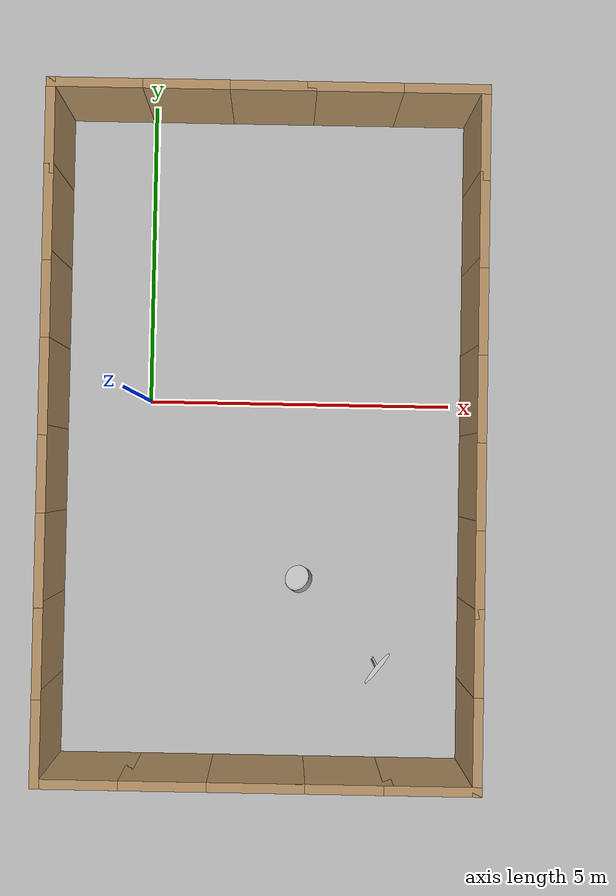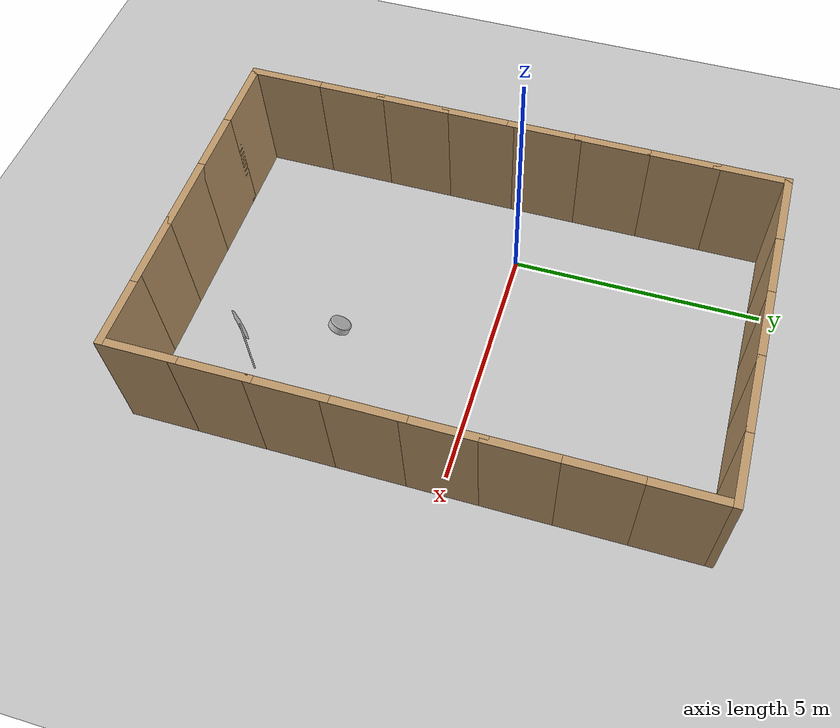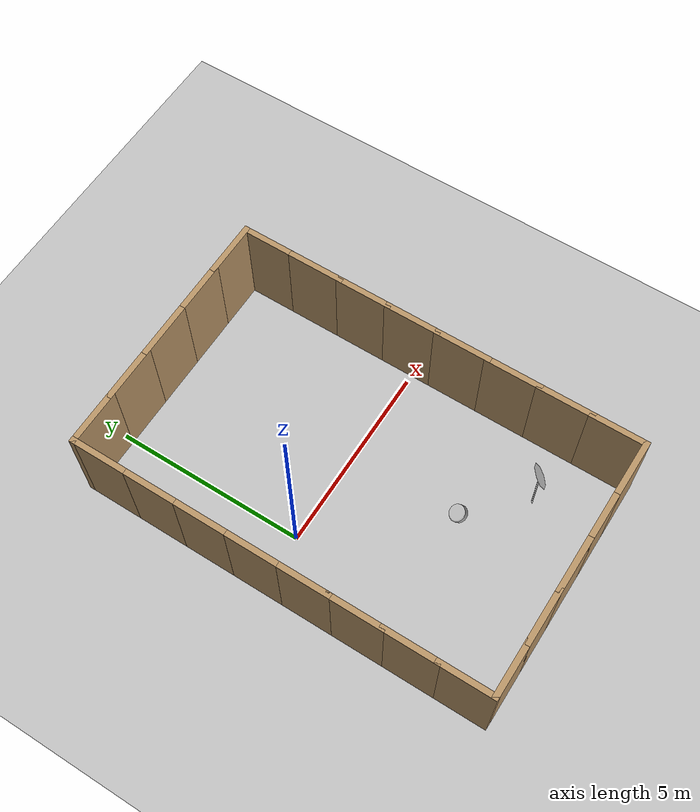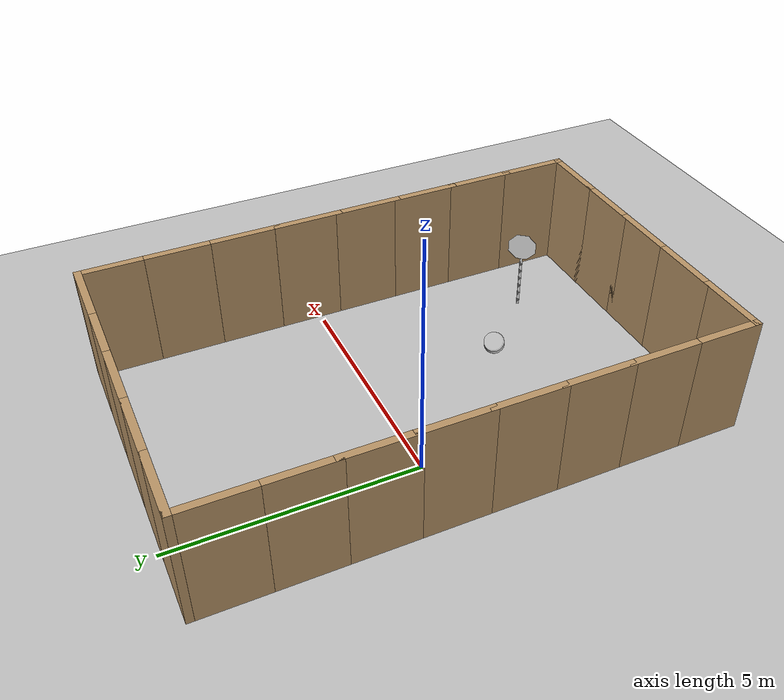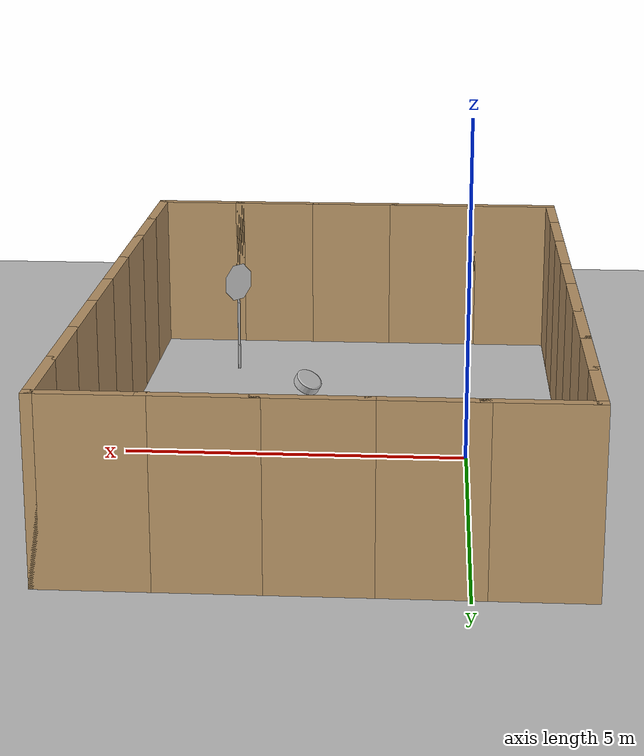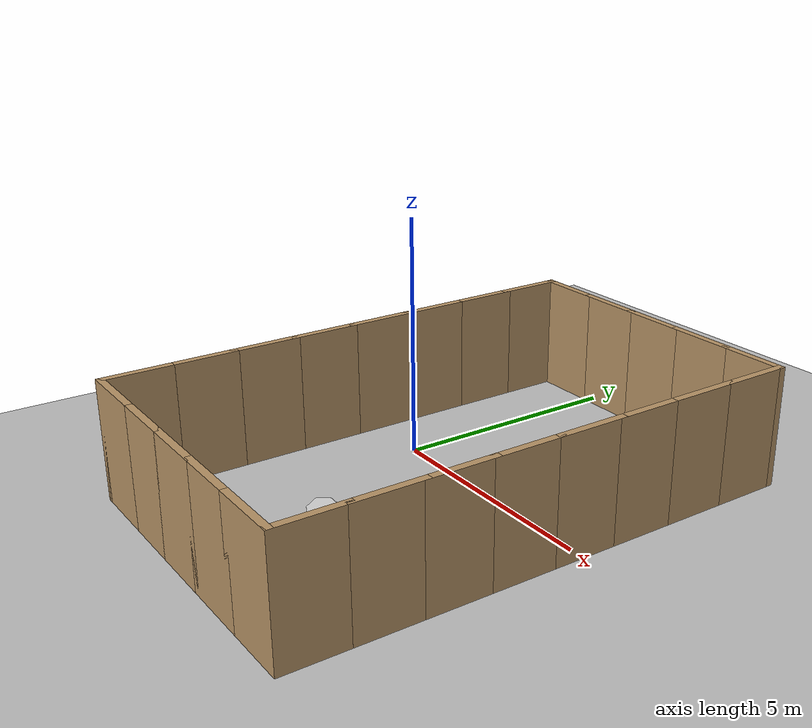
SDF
<sdf version="1.8">
 <world name="default">
  <plugin filename="ignition-gazebo-physics-system" name="ignition::gazebo::systems::Physics"/>
  <plugin filename="ignition-gazebo-user-commands-system" name="ignition::gazebo::systems::UserCommands"/>
  <plugin filename="ignition-gazebo-scene-broadcaster-system" name="ignition::gazebo::systems::SceneBroadcaster"/>
  <plugin filename="ignition-gazebo-sensors-system" name="ignition::gazebo::systems::Sensors">
   <render_engine>ogre2</render_engine>
  </plugin>
  <light name="sun" type="directional">
   <pose>0 0 10 0 0 0</pose>
   <diffuse>0.8 0.8 0.8 1</diffuse>
   <specular>0.2 0.2 0.2 1</specular>
   <attenuation>
    <range>1000</range>
    <constant>0.9</constant>
    <linear>0.01</linear>
    <quadratic>0.001</quadratic>
   </attenuation>
   <direction>-0.5 0.1 -0.9</direction>
  </light>
  <gravity>0 0 -9.8</gravity>
  <magnetic_field>6e-06 2.3e-05 -4.2e-05</magnetic_field>
  <atmosphere type="adiabatic"/>
  <physics name="1ms" type="ode">
   <max_step_size>0.001</max_step_size>
   <real_time_factor>1.0</real_time_factor>
   <real_time_update_rate>1000</real_time_update_rate>
  </physics>
  <scene><ambient>0.4 0.4 0.4 1</ambient><background>0.7 0.7 0.7 1</background><shadows>true</shadows></scene>
  <audio><device>default</device></audio>
  <spherical_coordinates>
   <surface_model>EARTH_WGS84</surface_model>
   <latitude_deg>0</latitude_deg>
   <longitude_deg>0</longitude_deg>
   <elevation>0</elevation>
   <heading_deg>0</heading_deg>
  </spherical_coordinates>
  <model name="ground_plane">
   <static>true</static>
   <link name="link">
    <collision name="collision">
     <geometry><plane><normal>0 0 1</normal><size>100 100</size></plane></geometry>
     <surface>
      <contact><collide_bitmask>65535</collide_bitmask></contact>
      <friction><ode><mu>100</mu><mu2>50</mu2></ode></friction>
     </surface>
    </collision>
    <visual name="visual">
     <cast_shadows>false</cast_shadows>
     <geometry><plane><normal>0 0 1</normal><size>100 100</size></plane></geometry>
     <material>
      <ambient>0.75 0.75 0.75 1</ambient>
      <diffuse>0.75 0.75 0.75 1</diffuse>
      <specular>0.1 0.1 0.1 1</specular>
     </material>
    </visual>
   </link>
  </model>
  <include>
   <name>Stop Sign</name>
   <pose>3.79214 -4.239 -0.018543 0 0 -2.25179</pose>
   <uri>model://stop_sign</uri>
  </include>
  <include>
   <name>car_wheel</name>
   <pose>2.37297 -2.83404 0.062561 -0.116255 0.975737 -0.657672</pose>
   <uri>model://car_wheel</uri>
  </include>
  <model name="wood_wall1">
   <static>true</static>
   <pose>1.90218 -0.55923 0 0 0 0</pose>
   <link name="wall">
    <collision name="wall_27_collision">
     <pose>-3.375 -0.675 1.25 0 0 -1.5708</pose>
     <geometry><box><size>1.5 0.15 2.5</size></box></geometry>
    </collision>
    <visual name="wall_27_visual">
     <pose>-3.375 -0.675 1.25 0 0 -1.5708</pose>
     <geometry><box><size>1.5 0.15 2.5</size></box></geometry>
     <material>
      <ambient>0.72 0.58 0.40 1</ambient>
      <diffuse>0.72 0.58 0.40 1</diffuse>
      <specular>0.08 0.08 0.08 1</specular>
     </material>
    </visual>
    <collision name="wall_28_collision">
     <pose>-3.375 -2.025 1.25 0 0 -1.5708</pose>
     <geometry><box><size>1.5 0.15 2.5</size></box></geometry>
    </collision>
    <visual name="wall_28_visual">
     <pose>-3.375 -2.025 1.25 0 0 -1.5708</pose>
     <geometry><box><size>1.5 0.15 2.5</size></box></geometry>
     <material>
      <ambient>0.72 0.58 0.40 1</ambient>
      <diffuse>0.72 0.58 0.40 1</diffuse>
      <specular>0.08 0.08 0.08 1</specular>
     </material>
    </visual>
    <collision name="wall_31_collision">
     <pose>-3.375 -3.375 1.25 0 0 -1.5708</pose>
     <geometry><box><size>1.5 0.15 2.5</size></box></geometry>
    </collision>
    <visual name="wall_31_visual">
     <pose>-3.375 -3.375 1.25 0 0 -1.5708</pose>
     <geometry><box><size>1.5 0.15 2.5</size></box></geometry>
     <material>
      <ambient>0.72 0.58 0.40 1</ambient>
      <diffuse>0.72 0.58 0.40 1</diffuse>
      <specular>0.08 0.08 0.08 1</specular>
     </material>
    </visual>
    <collision name="wall_32_collision">
     <pose>-3.375 -4.725 1.25 0 0 -1.5708</pose>
     <geometry><box><size>1.5 0.15 2.5</size></box></geometry>
    </collision>
    <visual name="wall_32_visual">
     <pose>-3.375 -4.725 1.25 0 0 -1.5708</pose>
     <geometry><box><size>1.5 0.15 2.5</size></box></geometry>
     <material>
      <ambient>0.72 0.58 0.40 1</ambient>
      <diffuse>0.72 0.58 0.40 1</diffuse>
      <specular>0.08 0.08 0.08 1</specular>
     </material>
    </visual>
    <collision name="wall_33_collision">
     <pose>-2.7 -5.4 1.25 0 0 0</pose>
     <geometry><box><size>1.5 0.15 2.5</size></box></geometry>
    </collision>
    <visual name="wall_33_visual">
     <pose>-2.7 -5.4 1.25 0 0 0</pose>
     <geometry><box><size>1.5 0.15 2.5</size></box></geometry>
     <material>
      <ambient>0.72 0.58 0.40 1</ambient>
      <diffuse>0.72 0.58 0.40 1</diffuse>
      <specular>0.08 0.08 0.08 1</specular>
     </material>
    </visual>
    <collision name="wall_34_collision">
     <pose>-1.35 -5.4 1.25 0 0 0</pose>
     <geometry><box><size>1.5 0.15 2.5</size></box></geometry>
    </collision>
    <visual name="wall_34_visual">
     <pose>-1.35 -5.4 1.25 0 0 0</pose>
     <geometry><box><size>1.5 0.15 2.5</size></box></geometry>
     <material>
      <ambient>0.72 0.58 0.40 1</ambient>
      <diffuse>0.72 0.58 0.40 1</diffuse>
      <specular>0.08 0.08 0.08 1</specular>
     </material>
    </visual>
    <collision name="wall_35_collision">
     <pose>0 -5.4 1.25 0 0 0</pose>
     <geometry><box><size>1.5 0.15 2.5</size></box></geometry>
    </collision>
    <visual name="wall_35_visual">
     <pose>0 -5.4 1.25 0 0 0</pose>
     <geometry><box><size>1.5 0.15 2.5</size></box></geometry>
     <material>
      <ambient>0.72 0.58 0.40 1</ambient>
      <diffuse>0.72 0.58 0.40 1</diffuse>
      <specular>0.08 0.08 0.08 1</specular>
     </material>
    </visual>
    <collision name="wall_36_collision">
     <pose>1.35 -5.4 1.25 0 0 0</pose>
     <geometry><box><size>1.5 0.15 2.5</size></box></geometry>
    </collision>
    <visual name="wall_36_visual">
     <pose>1.35 -5.4 1.25 0 0 0</pose>
     <geometry><box><size>1.5 0.15 2.5</size></box></geometry>
     <material>
      <ambient>0.72 0.58 0.40 1</ambient>
      <diffuse>0.72 0.58 0.40 1</diffuse>
      <specular>0.08 0.08 0.08 1</specular>
     </material>
    </visual>
    <collision name="wall_40_collision">
     <pose>2.7 -5.4 1.25 0 0 0</pose>
     <geometry><box><size>1.5 0.15 2.5</size></box></geometry>
    </collision>
    <visual name="wall_40_visual">
     <pose>2.7 -5.4 1.25 0 0 0</pose>
     <geometry><box><size>1.5 0.15 2.5</size></box></geometry>
     <material>
      <ambient>0.72 0.58 0.40 1</ambient>
      <diffuse>0.72 0.58 0.40 1</diffuse>
      <specular>0.08 0.08 0.08 1</specular>
     </material>
    </visual>
    <collision name="wall_41_collision">
     <pose>3.375 -4.725 1.25 0 0 1.5708</pose>
     <geometry><box><size>1.5 0.15 2.5</size></box></geometry>
    </collision>
    <visual name="wall_41_visual">
     <pose>3.375 -4.725 1.25 0 0 1.5708</pose>
     <geometry><box><size>1.5 0.15 2.5</size></box></geometry>
     <material>
      <ambient>0.72 0.58 0.40 1</ambient>
      <diffuse>0.72 0.58 0.40 1</diffuse>
      <specular>0.08 0.08 0.08 1</specular>
     </material>
    </visual>
    <collision name="wall_42_collision">
     <pose>3.375 -3.375 1.25 0 0 1.5708</pose>
     <geometry><box><size>1.5 0.15 2.5</size></box></geometry>
    </collision>
    <visual name="wall_42_visual">
     <pose>3.375 -3.375 1.25 0 0 1.5708</pose>
     <geometry><box><size>1.5 0.15 2.5</size></box></geometry>
     <material>
      <ambient>0.72 0.58 0.40 1</ambient>
      <diffuse>0.72 0.58 0.40 1</diffuse>
      <specular>0.08 0.08 0.08 1</specular>
     </material>
    </visual>
    <collision name="wall_43_collision">
     <pose>3.375 -2.025 1.25 0 0 1.5708</pose>
     <geometry><box><size>1.5 0.15 2.5</size></box></geometry>
    </collision>
    <visual name="wall_43_visual">
     <pose>3.375 -2.025 1.25 0 0 1.5708</pose>
     <geometry><box><size>1.5 0.15 2.5</size></box></geometry>
     <material>
      <ambient>0.72 0.58 0.40 1</ambient>
      <diffuse>0.72 0.58 0.40 1</diffuse>
      <specular>0.08 0.08 0.08 1</specular>
     </material>
    </visual>
    <collision name="wall_45_collision">
     <pose>3.375 -0.675 1.25 0 0 1.5708</pose>
     <geometry><box><size>1.5 0.15 2.5</size></box></geometry>
    </collision>
    <visual name="wall_45_visual">
     <pose>3.375 -0.675 1.25 0 0 1.5708</pose>
     <geometry><box><size>1.5 0.15 2.5</size></box></geometry>
     <material>
      <ambient>0.72 0.58 0.40 1</ambient>
      <diffuse>0.72 0.58 0.40 1</diffuse>
      <specular>0.08 0.08 0.08 1</specular>
     </material>
    </visual>
    <collision name="wall_46_collision">
     <pose>3.375 0.675 1.25 0 0 1.5708</pose>
     <geometry><box><size>1.5 0.15 2.5</size></box></geometry>
    </collision>
    <visual name="wall_46_visual">
     <pose>3.375 0.675 1.25 0 0 1.5708</pose>
     <geometry><box><size>1.5 0.15 2.5</size></box></geometry>
     <material>
      <ambient>0.72 0.58 0.40 1</ambient>
      <diffuse>0.72 0.58 0.40 1</diffuse>
      <specular>0.08 0.08 0.08 1</specular>
     </material>
    </visual>
    <collision name="wall_49_collision">
     <pose>3.375 2.025 1.25 0 0 1.5708</pose>
     <geometry><box><size>1.5 0.15 2.5</size></box></geometry>
    </collision>
    <visual name="wall_49_visual">
     <pose>3.375 2.025 1.25 0 0 1.5708</pose>
     <geometry><box><size>1.5 0.15 2.5</size></box></geometry>
     <material>
      <ambient>0.72 0.58 0.40 1</ambient>
      <diffuse>0.72 0.58 0.40 1</diffuse>
      <specular>0.08 0.08 0.08 1</specular>
     </material>
    </visual>
    <collision name="wall_51_collision">
     <pose>3.375 3.375 1.25 0 0 1.5708</pose>
     <geometry><box><size>1.5 0.15 2.5</size></box></geometry>
    </collision>
    <visual name="wall_51_visual">
     <pose>3.375 3.375 1.25 0 0 1.5708</pose>
     <geometry><box><size>1.5 0.15 2.5</size></box></geometry>
     <material>
      <ambient>0.72 0.58 0.40 1</ambient>
      <diffuse>0.72 0.58 0.40 1</diffuse>
      <specular>0.08 0.08 0.08 1</specular>
     </material>
    </visual>
    <collision name="wall_52_collision">
     <pose>3.375 4.725 1.25 0 0 1.5708</pose>
     <geometry><box><size>1.5 0.15 2.5</size></box></geometry>
    </collision>
    <visual name="wall_52_visual">
     <pose>3.375 4.725 1.25 0 0 1.5708</pose>
     <geometry><box><size>1.5 0.15 2.5</size></box></geometry>
     <material>
      <ambient>0.72 0.58 0.40 1</ambient>
      <diffuse>0.72 0.58 0.40 1</diffuse>
      <specular>0.08 0.08 0.08 1</specular>
     </material>
    </visual>
    <collision name="wall_53_collision">
     <pose>2.7 5.4 1.25 0 0 3.14159</pose>
     <geometry><box><size>1.5 0.15 2.5</size></box></geometry>
    </collision>
    <visual name="wall_53_visual">
     <pose>2.7 5.4 1.25 0 0 3.14159</pose>
     <geometry><box><size>1.5 0.15 2.5</size></box></geometry>
     <material>
      <ambient>0.72 0.58 0.40 1</ambient>
      <diffuse>0.72 0.58 0.40 1</diffuse>
      <specular>0.08 0.08 0.08 1</specular>
     </material>
    </visual>
    <collision name="wall_54_collision">
     <pose>1.35 5.4 1.25 0 0 3.14159</pose>
     <geometry><box><size>1.5 0.15 2.5</size></box></geometry>
    </collision>
    <visual name="wall_54_visual">
     <pose>1.35 5.4 1.25 0 0 3.14159</pose>
     <geometry><box><size>1.5 0.15 2.5</size></box></geometry>
     <material>
      <ambient>0.72 0.58 0.40 1</ambient>
      <diffuse>0.72 0.58 0.40 1</diffuse>
      <specular>0.08 0.08 0.08 1</specular>
     </material>
    </visual>
    <collision name="wall_55_collision">
     <pose>0 5.4 1.25 0 0 3.14159</pose>
     <geometry><box><size>1.5 0.15 2.5</size></box></geometry>
    </collision>
    <visual name="wall_55_visual">
     <pose>0 5.4 1.25 0 0 3.14159</pose>
     <geometry><box><size>1.5 0.15 2.5</size></box></geometry>
     <material>
      <ambient>0.72 0.58 0.40 1</ambient>
      <diffuse>0.72 0.58 0.40 1</diffuse>
      <specular>0.08 0.08 0.08 1</specular>
     </material>
    </visual>
    <collision name="wall_56_collision">
     <pose>-1.35 5.4 1.25 0 0 3.14159</pose>
     <geometry><box><size>1.5 0.15 2.5</size></box></geometry>
    </collision>
    <visual name="wall_56_visual">
     <pose>-1.35 5.4 1.25 0 0 3.14159</pose>
     <geometry><box><size>1.5 0.15 2.5</size></box></geometry>
     <material>
      <ambient>0.72 0.58 0.40 1</ambient>
      <diffuse>0.72 0.58 0.40 1</diffuse>
      <specular>0.08 0.08 0.08 1</specular>
     </material>
    </visual>
    <collision name="wall_57_collision">
     <pose>-2.7 5.4 1.25 0 0 3.14159</pose>
     <geometry><box><size>1.5 0.15 2.5</size></box></geometry>
    </collision>
    <visual name="wall_57_visual">
     <pose>-2.7 5.4 1.25 0 0 3.14159</pose>
     <geometry><box><size>1.5 0.15 2.5</size></box></geometry>
     <material>
      <ambient>0.72 0.58 0.40 1</ambient>
      <diffuse>0.72 0.58 0.40 1</diffuse>
      <specular>0.08 0.08 0.08 1</specular>
     </material>
    </visual>
    <collision name="wall_58_collision">
     <pose>-3.375 4.725 1.25 0 0 -1.5708</pose>
     <geometry><box><size>1.5 0.15 2.5</size></box></geometry>
    </collision>
    <visual name="wall_58_visual">
     <pose>-3.375 4.725 1.25 0 0 -1.5708</pose>
     <geometry><box><size>1.5 0.15 2.5</size></box></geometry>
     <material>
      <ambient>0.72 0.58 0.40 1</ambient>
      <diffuse>0.72 0.58 0.40 1</diffuse>
      <specular>0.08 0.08 0.08 1</specular>
     </material>
    </visual>
    <collision name="wall_59_collision">
     <pose>-3.375 3.375 1.25 0 0 -1.5708</pose>
     <geometry><box><size>1.5 0.15 2.5</size></box></geometry>
    </collision>
    <visual name="wall_59_visual">
     <pose>-3.375 3.375 1.25 0 0 -1.5708</pose>
     <geometry><box><size>1.5 0.15 2.5</size></box></geometry>
     <material>
      <ambient>0.72 0.58 0.40 1</ambient>
      <diffuse>0.72 0.58 0.40 1</diffuse>
      <specular>0.08 0.08 0.08 1</specular>
     </material>
    </visual>
    <collision name="wall_61_collision">
     <pose>-3.375 2.025 1.25 0 0 -1.5708</pose>
     <geometry><box><size>1.5 0.15 2.5</size></box></geometry>
    </collision>
    <visual name="wall_61_visual">
     <pose>-3.375 2.025 1.25 0 0 -1.5708</pose>
     <geometry><box><size>1.5 0.15 2.5</size></box></geometry>
     <material>
      <ambient>0.72 0.58 0.40 1</ambient>
      <diffuse>0.72 0.58 0.40 1</diffuse>
      <specular>0.08 0.08 0.08 1</specular>
     </material>
    </visual>
    <collision name="wall_62_collision">
     <pose>-3.375 0.675 1.25 0 0 -1.5708</pose>
     <geometry><box><size>1.5 0.15 2.5</size></box></geometry>
    </collision>
    <visual name="wall_62_visual">
     <pose>-3.375 0.675 1.25 0 0 -1.5708</pose>
     <geometry><box><size>1.5 0.15 2.5</size></box></geometry>
     <material>
      <ambient>0.72 0.58 0.40 1</ambient>
      <diffuse>0.72 0.58 0.40 1</diffuse>
      <specular>0.08 0.08 0.08 1</specular>
     </material>
    </visual>
   </link>
  </model>
 </world>
</sdf>

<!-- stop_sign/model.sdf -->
<sdf version="1.6">
    <model name="Stop Sign">
        <static>true</static>
        <link name="link">
            <collision name="collision">
                <geometry>
                    <mesh>
                        <uri>model://stop_sign/meshes/stop_sign.dae</uri>
                    </mesh>
                </geometry>
            </collision>
            <visual name="visual">
                <geometry>
                    <mesh>
                        <uri>model://stop_sign/meshes/stop_sign.dae</uri>
                    </mesh>
                </geometry>
                <material>
                    <ambient>1 1 1 1</ambient>
                    <diffuse>1 1 1 1</diffuse>
                    <specular>0.05 0.05 0.05 1</specular>
                    <emissive>0 0 0 1</emissive>
                    <pbr>
                        <metal>
                            <albedo_map>model://stop_sign/materials/textures/StopSign_Diffuse.png</albedo_map>
                            <metalness>0.0</metalness>
                            <roughness>0.9</roughness>
                        </metal>
                    </pbr>
                </material>
            </visual>
        </link>
    </model>
</sdf>

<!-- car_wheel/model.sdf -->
<sdf version="1.6">
    <model name="car_wheel">
        <link name="link">
            <pose>0 0 0.21682 0 1.5707 0</pose>
            <inertial>
                <mass>12</mass>
                <inertia>
                    <ixx>0.167005283</ixx>
                    <ixy>0</ixy>
                    <ixz>0</ixz>
                    <iyy>0.167005283</iyy>
                    <iyz>0</iyz>
                    <izz>0.282065474</izz>
                </inertia>
            </inertial>
            <collision name="collision">
                <geometry>
                    <cylinder>
                        <radius>0.21682</radius>
                        <length>0.16116</length>
                    </cylinder>
                </geometry>
                <surface>
                    <friction>
                        <ode>
                            <mu>1.0</mu>
                            <mu2>1.0</mu2>
                            <fdir1>0 0 1</fdir1>
                            <slip1>0.0</slip1>
                            <slip2>0.0</slip2>
                        </ode>
                    </friction>
                    <contact>
                        <ode>
                            <min_depth>0.005</min_depth>
                            <kp>1e8</kp>
                        </ode>
                    </contact>
                </surface>
            </collision>
            <visual name="visual">
                <pose>0 0 -0.08058 0 0 0</pose>
                <geometry>
                    <mesh>
                        <uri>model://car_wheel/meshes/car_wheel.dae</uri>
                    </mesh>
                </geometry>
            </visual>
        </link>
    </model>
</sdf>
